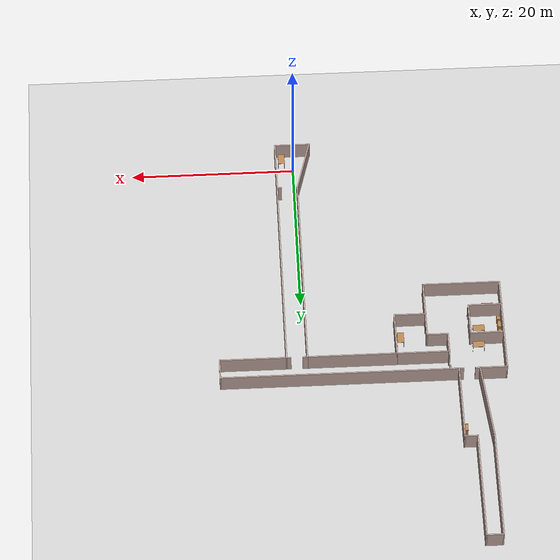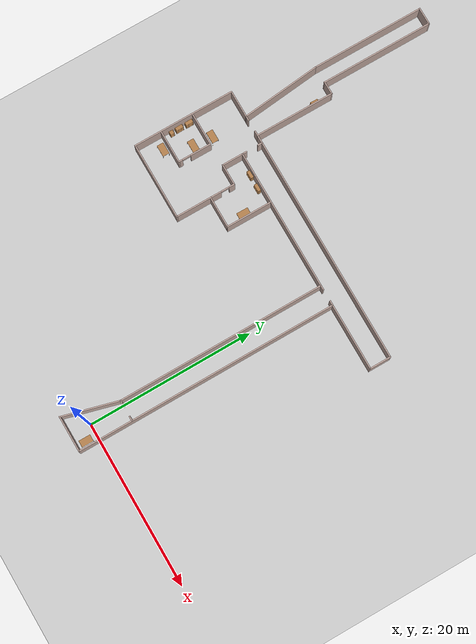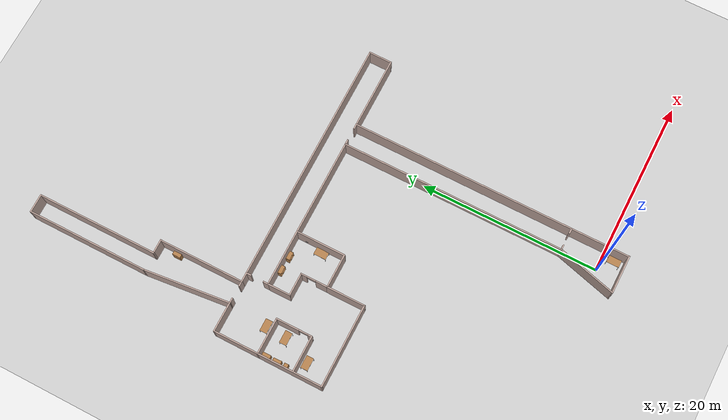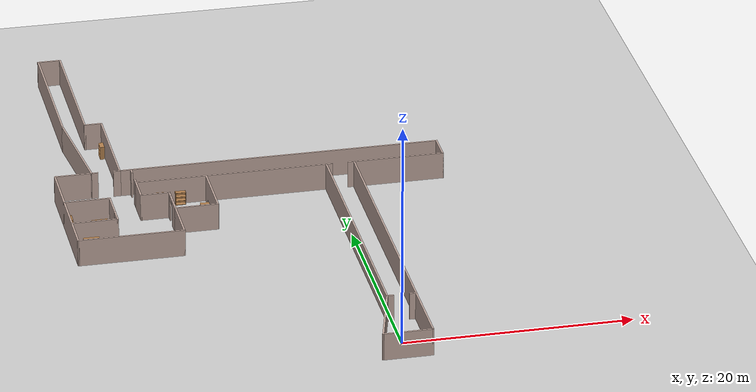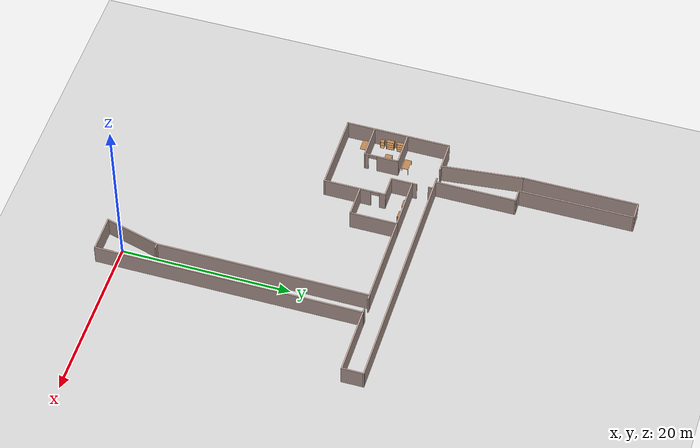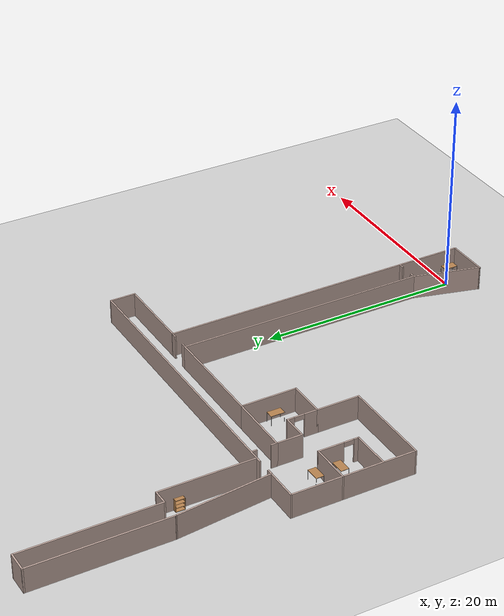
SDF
<sdf version="1.6">
 <world name="default">
  <light name="sun" type="directional">
   <pose>0 0 10 0 -0 0</pose>
   <diffuse>0.8 0.8 0.8 1</diffuse>
   <specular>0.1 0.1 0.1 1</specular>
   <attenuation>
    <range>1000</range>
    <constant>0.9</constant>
    <linear>0.01</linear>
    <quadratic>0.001</quadratic>
   </attenuation>
   <direction>-0.5 0.5 -1</direction>
  </light>
  <model name="ground_plane">
   <static>1</static>
   <link name="link">
    <collision name="collision">
     <geometry><plane><normal>0 0 1</normal><size>100 100</size></plane></geometry>
     <surface><friction><ode><mu>100</mu><mu2>50</mu2></ode></friction></surface>
    </collision>
    <visual name="visual">
     <cast_shadows>0</cast_shadows>
     <geometry><plane><normal>0 0 1</normal><size>100 120</size></plane></geometry>
     <material>
      <script><uri>file://media/materials/scripts/gazebo.material</uri><name>Gazebo/Grey</name></script>
     </material>
    </visual>
   </link>
  </model>
  <gravity>0 0 -9.8</gravity>
  <magnetic_field>6e-06 2.3e-05 -4.2e-05</magnetic_field>
  <atmosphere type="adiabatic"/>
  <physics name="default_physics" default="0" type="ode">
   <max_step_size>0.001</max_step_size>
   <real_time_factor>1</real_time_factor>
   <real_time_update_rate>1000</real_time_update_rate>
  </physics>
  <scene>
   <ambient>0.9 0.9 0.9 1</ambient>
   <background>0.7 0.7 0.7 1</background>
   <shadows>1</shadows>
   <grid>0</grid>
  </scene>
  <spherical_coordinates>
   <surface_model>EARTH_WGS84</surface_model>
   <latitude_deg>0</latitude_deg>
   <longitude_deg>0</longitude_deg>
   <elevation>0</elevation>
   <heading_deg>0</heading_deg>
  </spherical_coordinates>
  <model name="utias2">
   <pose>-6.98603 26.1314 -0.100807 0 -0 0</pose>
   <link name="Wall_0">
    <collision name="Wall_0_Collision">
     <geometry><box><size>4.4 0.15 2.5</size></box></geometry>
     <pose>0 0 1.25 0 -0 0</pose>
    </collision>
    <visual name="Wall_0_Visual">
     <pose>0 0 1.25 0 -0 0</pose>
     <geometry><box><size>4.4 0.15 2.5</size></box></geometry>
     <material>
      <script><uri>file://media/materials/scripts/gazebo.material</uri><name>Gazebo/Grey</name></script>
      <ambient>0.760784 0.662745 0.627451 1</ambient>
     </material>
    </visual>
    <pose>7.00014 -28.4915 0 0 -0 0</pose>
   </link>
   <link name="Wall_1">
    <collision name="Wall_1_Collision">
     <geometry><box><size>31.65 0.15 2.5</size></box></geometry>
     <pose>0 0 1.25 0 -0 0</pose>
    </collision>
    <visual name="Wall_1_Visual">
     <pose>0 0 1.25 0 -0 0</pose>
     <geometry><box><size>31.65 0.15 2.5</size></box></geometry>
     <material>
      <script><uri>file://media/materials/scripts/gazebo.material</uri><name>Gazebo/Grey</name></script>
      <ambient>0.760784 0.662745 0.627451 1</ambient>
     </material>
    </visual>
    <pose>9.12514 -12.7415 0 0 -0 1.5708</pose>
   </link>
   <link name="Wall_10">
    <collision name="Wall_10_Collision">
     <geometry><box><size>9.70249 0.15 2.5</size></box></geometry>
     <pose>0 0 1.25 0 -0 0</pose>
    </collision>
    <visual name="Wall_10_Visual">
     <pose>0 0 1.25 0 -0 0</pose>
     <geometry><box><size>9.70249 0.15 2.5</size></box></geometry>
     <material>
      <script><uri>file://media/materials/scripts/gazebo.material</uri><name>Gazebo/Grey</name></script>
      <ambient>0.760784 0.662745 0.627451 1</ambient>
     </material>
    </visual>
    <pose>-14.3749 10.2585 0 0 0 -1.46592</pose>
   </link>
   <link name="Wall_12">
    <collision name="Wall_12_Collision">
     <geometry><box><size>3.4 0.15 2.5</size></box></geometry>
     <pose>0 0 1.25 0 -0 0</pose>
    </collision>
    <visual name="Wall_12_Visual">
     <pose>0 0 1.25 0 -0 0</pose>
     <geometry><box><size>3.4 0.15 2.5</size></box></geometry>
     <material>
      <script><uri>file://media/materials/scripts/gazebo.material</uri><name>Gazebo/Grey</name></script>
      <ambient>0.760784 0.662745 0.627451 1</ambient>
     </material>
    </visual>
    <pose>-15.4999 5.50846 0 0 -0 3.14159</pose>
   </link>
   <link name="Wall_14">
    <collision name="Wall_14_Collision">
     <geometry><box><size>12.4 0.15 2.5</size></box></geometry>
     <pose>0 0 1.25 0 -0 0</pose>
    </collision>
    <visual name="Wall_14_Visual">
     <pose>0 0 1.25 0 -0 0</pose>
     <geometry><box><size>12.4 0.15 2.5</size></box></geometry>
     <material>
      <script><uri>file://media/materials/scripts/gazebo.material</uri><name>Gazebo/Grey</name></script>
      <ambient>0.760784 0.662745 0.627451 1</ambient>
     </material>
    </visual>
    <pose>-17.1249 -0.616541 0 0 0 -1.5708</pose>
   </link>
   <link name="Wall_15">
    <collision name="Wall_15_Collision">
     <geometry><box><size>9.40054 0.15 2.5</size></box></geometry>
     <pose>0 0 1.25 0 -0 0</pose>
    </collision>
    <visual name="Wall_15_Visual">
     <pose>0 0 1.25 0 -0 0</pose>
     <geometry><box><size>9.40054 0.15 2.5</size></box></geometry>
     <material>
      <script><uri>file://media/materials/scripts/gazebo.material</uri><name>Gazebo/Grey</name></script>
      <ambient>0.760784 0.662745 0.627451 1</ambient>
     </material>
    </visual>
    <pose>-12.4999 -6.74154 0 0 -0 0</pose>
   </link>
   <link name="Wall_16">
    <collision name="Wall_16_Collision">
     <geometry><box><size>4.4 0.15 2.5</size></box></geometry>
     <pose>0 0 1.25 0 -0 0</pose>
    </collision>
    <visual name="Wall_16_Visual">
     <pose>0 0 1.25 0 -0 0</pose>
     <geometry><box><size>4.4 0.15 2.5</size></box></geometry>
     <material>
      <script><uri>file://media/materials/scripts/gazebo.material</uri><name>Gazebo/Grey</name></script>
      <ambient>0.760784 0.662745 0.627451 1</ambient>
     </material>
    </visual>
    <pose>-7.87486 -4.61654 0 0 -0 1.5708</pose>
   </link>
   <link name="Wall_17">
    <collision name="Wall_17_Collision">
     <geometry><box><size>3.9 0.15 2.5</size></box></geometry>
     <pose>0 0 1.25 0 -0 0</pose>
    </collision>
    <visual name="Wall_17_Visual">
     <pose>0 0 1.25 0 -0 0</pose>
     <geometry><box><size>3.9 0.15 2.5</size></box></geometry>
     <material>
      <script><uri>file://media/materials/scripts/gazebo.material</uri><name>Gazebo/Grey</name></script>
      <ambient>0.760784 0.662745 0.627451 1</ambient>
     </material>
    </visual>
    <pose>-5.99986 -2.49154 0 0 -0 0</pose>
   </link>
   <link name="Wall_18">
    <collision name="Wall_18_Collision">
     <geometry><box><size>5.65 0.15 2.5</size></box></geometry>
     <pose>0 0 1.25 0 -0 0</pose>
    </collision>
    <visual name="Wall_18_Visual">
     <pose>0 0 1.25 0 -0 0</pose>
     <geometry><box><size>5.65 0.15 2.5</size></box></geometry>
     <material>
      <script><uri>file://media/materials/scripts/gazebo.material</uri><name>Gazebo/Grey</name></script>
      <ambient>0.760784 0.662745 0.627451 1</ambient>
     </material>
    </visual>
    <pose>-4.12486 0.258459 0 0 -0 1.5708</pose>
   </link>
   <link name="Wall_19">
    <collision name="Wall_19_Collision">
     <geometry><box><size>10.9 0.15 2.5</size></box></geometry>
     <pose>0 0 1.25 0 -0 0</pose>
    </collision>
    <visual name="Wall_19_Visual">
     <pose>0 0 1.25 0 -0 0</pose>
     <geometry><box><size>10.9 0.15 2.5</size></box></geometry>
     <material>
      <script><uri>file://media/materials/scripts/gazebo.material</uri><name>Gazebo/Grey</name></script>
      <ambient>0.760784 0.662745 0.627451 1</ambient>
     </material>
    </visual>
    <pose>1.25014 3.00846 0 0 -0 0</pose>
   </link>
   <link name="Wall_2">
    <collision name="Wall_2_Collision">
     <geometry><box><size>8.15 0.15 2.5</size></box></geometry>
     <pose>0 0 1.25 0 -0 0</pose>
    </collision>
    <visual name="Wall_2_Visual">
     <pose>0 0 1.25 0 -0 0</pose>
     <geometry><box><size>8.15 0.15 2.5</size></box></geometry>
     <material>
      <script><uri>file://media/materials/scripts/gazebo.material</uri><name>Gazebo/Grey</name></script>
      <ambient>0.760784 0.662745 0.627451 1</ambient>
     </material>
    </visual>
    <pose>13.1251 3.00846 0 0 -0 0</pose>
   </link>
   <link name="Wall_21">
    <collision name="Wall_21_Collision">
     <geometry><box><size>6.4 0.15 2.5</size></box></geometry>
     <pose>0 0 1.25 0 -0 0</pose>
    </collision>
    <visual name="Wall_21_Visual">
     <pose>0 0 1.25 0 -0 0</pose>
     <geometry><box><size>6.4 0.15 2.5</size></box></geometry>
     <material>
      <script><uri>file://media/materials/scripts/gazebo.material</uri><name>Gazebo/Grey</name></script>
      <ambient>0.760784 0.662745 0.627451 1</ambient>
     </material>
    </visual>
    <pose>-7.24986 3.00846 0 0 -0 3.14159</pose>
   </link>
   <link name="Wall_22">
    <collision name="Wall_22_Collision">
     <geometry><box><size>2.65 0.15 2.5</size></box></geometry>
     <pose>0 0 1.25 0 -0 0</pose>
    </collision>
    <visual name="Wall_22_Visual">
     <pose>0 0 1.25 0 -0 0</pose>
     <geometry><box><size>2.65 0.15 2.5</size></box></geometry>
     <material>
      <script><uri>file://media/materials/scripts/gazebo.material</uri><name>Gazebo/Grey</name></script>
      <ambient>0.760784 0.662745 0.627451 1</ambient>
     </material>
    </visual>
    <pose>-10.3749 1.75846 0 0 0 -1.5708</pose>
   </link>
   <link name="Wall_23">
    <collision name="Wall_23_Collision">
     <geometry><box><size>2.65 0.15 2.5</size></box></geometry>
     <pose>0 0 1.25 0 -0 0</pose>
    </collision>
    <visual name="Wall_23_Visual">
     <pose>0 0 1.25 0 -0 0</pose>
     <geometry><box><size>2.65 0.15 2.5</size></box></geometry>
     <material>
      <script><uri>file://media/materials/scripts/gazebo.material</uri><name>Gazebo/Grey</name></script>
      <ambient>0.760784 0.662745 0.627451 1</ambient>
     </material>
    </visual>
    <pose>-9.12486 0.508459 0 0 -0 0</pose>
   </link>
   <link name="Wall_24">
    <pose>-7.87486 -0.991541 0 0 0 -1.5708</pose>
    <visual name="Wall_24_Visual_0">
     <pose>-1.20455 0 1.25 0 -0 0</pose>
     <geometry><box><size>0.740907 0.15 2.5</size></box></geometry>
     <material>
      <script><uri>file://media/materials/scripts/gazebo.material</uri><name>Gazebo/Grey</name></script>
      <ambient>0.760784 0.662745 0.627451 1</ambient>
     </material>
    </visual>
    <collision name="Wall_24_Collision_0">
     <geometry><box><size>0.740907 0.15 2.5</size></box></geometry>
     <pose>-1.20455 0 1.25 0 -0 0</pose>
    </collision>
    <visual name="Wall_24_Visual_1">
     <pose>0.870453 0 1.25 0 -0 0</pose>
     <geometry><box><size>1.40909 0.15 2.5</size></box></geometry>
     <material>
      <script><uri>file://media/materials/scripts/gazebo.material</uri><name>Gazebo/Grey</name></script>
      <ambient>0.760784 0.662745 0.627451 1</ambient>
     </material>
    </visual>
    <collision name="Wall_24_Collision_1">
     <geometry><box><size>1.40909 0.15 2.5</size></box></geometry>
     <pose>0.870453 0 1.25 0 -0 0</pose>
    </collision>
    <visual name="Wall_24_Visual_2">
     <pose>-0.334093 0 2.25 0 -0 0</pose>
     <geometry><box><size>1 0.15 0.5</size></box></geometry>
     <material>
      <script><uri>file://media/materials/scripts/gazebo.material</uri><name>Gazebo/Grey</name></script>
      <ambient>0.760784 0.662745 0.627451 1</ambient>
     </material>
    </visual>
    <collision name="Wall_24_Collision_2">
     <geometry><box><size>1 0.15 0.5</size></box></geometry>
     <pose>-0.334093 0 2.25 0 -0 0</pose>
    </collision>
   </link>
   <link name="Wall_26">
    <collision name="Wall_26_Collision">
     <geometry><box><size>4.15 0.15 2.5</size></box></geometry>
     <pose>0 0 1.25 0 -0 0</pose>
    </collision>
    <visual name="Wall_26_Visual">
     <pose>0 0 1.25 0 -0 0</pose>
     <geometry><box><size>4.15 0.15 2.5</size></box></geometry>
     <material>
      <script><uri>file://media/materials/scripts/gazebo.material</uri><name>Gazebo/Grey</name></script>
      <ambient>0.760784 0.662745 0.627451 1</ambient>
     </material>
    </visual>
    <pose>-15.1249 0.508459 0 0 -0 0</pose>
   </link>
   <link name="Wall_27">
    <pose>-13.1249 -1.49154 0 0 0 -1.5708</pose>
    <visual name="Wall_27_Visual_0">
     <pose>-0.771545 0 1.25 0 -0 0</pose>
     <geometry><box><size>2.60691 0.15 2.5</size></box></geometry>
     <material>
      <script><uri>file://media/materials/scripts/gazebo.material</uri><name>Gazebo/Grey</name></script>
      <ambient>0.760784 0.662745 0.627451 1</ambient>
     </material>
    </visual>
    <collision name="Wall_27_Collision_0">
     <geometry><box><size>2.60691 0.15 2.5</size></box></geometry>
     <pose>-0.771545 0 1.25 0 -0 0</pose>
    </collision>
    <visual name="Wall_27_Visual_1">
     <pose>1.80346 0 1.25 0 -0 0</pose>
     <geometry><box><size>0.543089 0.15 2.5</size></box></geometry>
     <material>
      <script><uri>file://media/materials/scripts/gazebo.material</uri><name>Gazebo/Grey</name></script>
      <ambient>0.760784 0.662745 0.627451 1</ambient>
     </material>
    </visual>
    <collision name="Wall_27_Collision_1">
     <geometry><box><size>0.543089 0.15 2.5</size></box></geometry>
     <pose>1.80346 0 1.25 0 -0 0</pose>
    </collision>
    <visual name="Wall_27_Visual_2">
     <pose>1.03191 0 2.25 0 -0 0</pose>
     <geometry><box><size>1 0.15 0.5</size></box></geometry>
     <material>
      <script><uri>file://media/materials/scripts/gazebo.material</uri><name>Gazebo/Grey</name></script>
      <ambient>0.760784 0.662745 0.627451 1</ambient>
     </material>
    </visual>
    <collision name="Wall_27_Collision_2">
     <geometry><box><size>1 0.15 0.5</size></box></geometry>
     <pose>1.03191 0 2.25 0 -0 0</pose>
    </collision>
   </link>
   <link name="Wall_28">
    <collision name="Wall_28_Collision">
     <geometry><box><size>4.15 0.15 2.5</size></box></geometry>
     <pose>0 0 1.25 0 -0 0</pose>
    </collision>
    <visual name="Wall_28_Visual">
     <pose>0 0 1.25 0 -0 0</pose>
     <geometry><box><size>4.15 0.15 2.5</size></box></geometry>
     <material>
      <script><uri>file://media/materials/scripts/gazebo.material</uri><name>Gazebo/Grey</name></script>
      <ambient>0.760784 0.662745 0.627451 1</ambient>
     </material>
    </visual>
    <pose>-15.1249 -3.49154 0 0 -0 3.14159</pose>
   </link>
   <link name="Wall_3">
    <collision name="Wall_3_Collision">
     <geometry><box><size>2.65 0.15 2.5</size></box></geometry>
     <pose>0 0 1.25 0 -0 0</pose>
    </collision>
    <visual name="Wall_3_Visual">
     <pose>0 0 1.25 0 -0 0</pose>
     <geometry><box><size>2.65 0.15 2.5</size></box></geometry>
     <material>
      <script><uri>file://media/materials/scripts/gazebo.material</uri><name>Gazebo/Grey</name></script>
      <ambient>0.760784 0.662745 0.627451 1</ambient>
     </material>
    </visual>
    <pose>17.1251 4.25846 0 0 -0 1.5708</pose>
   </link>
   <link name="Wall_30">
    <collision name="Wall_30_Collision">
     <geometry><box><size>25.15 0.15 2.5</size></box></geometry>
     <pose>0 0 1.25 0 -0 0</pose>
    </collision>
    <visual name="Wall_30_Visual">
     <pose>0 0 1.25 0 -0 0</pose>
     <geometry><box><size>25.15 0.15 2.5</size></box></geometry>
     <material>
      <script><uri>file://media/materials/scripts/gazebo.material</uri><name>Gazebo/Grey</name></script>
      <ambient>0.760784 0.662745 0.627451 1</ambient>
     </material>
    </visual>
    <pose>6.62514 -9.49154 0 0 0 -1.5708</pose>
   </link>
   <link name="Wall_31">
    <collision name="Wall_31_Collision">
     <geometry><box><size>6.88146 0.15 2.5</size></box></geometry>
     <pose>0 0 1.25 0 -0 0</pose>
    </collision>
    <visual name="Wall_31_Visual">
     <pose>0 0 1.25 0 -0 0</pose>
     <geometry><box><size>6.88146 0.15 2.5</size></box></geometry>
     <material>
      <script><uri>file://media/materials/scripts/gazebo.material</uri><name>Gazebo/Grey</name></script>
      <ambient>0.760784 0.662745 0.627451 1</ambient>
     </material>
    </visual>
    <pose>5.75014 -25.2415 0 0 0 -1.83379</pose>
   </link>
   <link name="Wall_33">
    <collision name="Wall_33_Collision">
     <geometry><box><size>0.65 0.15 2.5</size></box></geometry>
     <pose>0 0 1.25 0 -0 0</pose>
    </collision>
    <visual name="Wall_33_Visual">
     <pose>0 0 1.25 0 -0 0</pose>
     <geometry><box><size>0.65 0.15 2.5</size></box></geometry>
     <material>
      <script><uri>file://media/materials/scripts/gazebo.material</uri><name>Gazebo/Grey</name></script>
      <ambient>0.760784 0.662745 0.627451 1</ambient>
     </material>
    </visual>
    <pose>6.87514 -21.9915 0 0 -0 0</pose>
   </link>
   <link name="Wall_35">
    <collision name="Wall_35_Collision">
     <geometry><box><size>0.65 0.15 2.5</size></box></geometry>
     <pose>0 0 1.25 0 -0 0</pose>
    </collision>
    <visual name="Wall_35_Visual">
     <pose>0 0 1.25 0 -0 0</pose>
     <geometry><box><size>0.65 0.15 2.5</size></box></geometry>
     <material>
      <script><uri>file://media/materials/scripts/gazebo.material</uri><name>Gazebo/Grey</name></script>
      <ambient>0.760784 0.662745 0.627451 1</ambient>
     </material>
    </visual>
    <pose>8.87514 -21.9915 0 0 -0 3.14159</pose>
   </link>
   <link name="Wall_37">
    <collision name="Wall_37_Collision">
     <geometry><box><size>0.65 0.15 2.5</size></box></geometry>
     <pose>0 0 1.25 0 -0 0</pose>
    </collision>
    <visual name="Wall_37_Visual">
     <pose>0 0 1.25 0 -0 0</pose>
     <geometry><box><size>0.65 0.15 2.5</size></box></geometry>
     <material>
      <script><uri>file://media/materials/scripts/gazebo.material</uri><name>Gazebo/Grey</name></script>
      <ambient>0.760784 0.662745 0.627451 1</ambient>
     </material>
    </visual>
    <pose>8.87514 3.00846 0 0 -0 3.14159</pose>
   </link>
   <link name="Wall_39">
    <collision name="Wall_39_Collision">
     <geometry><box><size>0.65 0.15 2.5</size></box></geometry>
     <pose>0 0 1.25 0 -0 0</pose>
    </collision>
    <visual name="Wall_39_Visual">
     <pose>0 0 1.25 0 -0 0</pose>
     <geometry><box><size>0.65 0.15 2.5</size></box></geometry>
     <material>
      <script><uri>file://media/materials/scripts/gazebo.material</uri><name>Gazebo/Grey</name></script>
      <ambient>0.760784 0.662745 0.627451 1</ambient>
     </material>
    </visual>
    <pose>6.87514 3.00846 0 0 -0 0</pose>
   </link>
   <link name="Wall_4">
    <collision name="Wall_4_Collision">
     <geometry><box><size>28.65 0.15 2.5</size></box></geometry>
     <pose>0 0 1.25 0 -0 0</pose>
    </collision>
    <visual name="Wall_4_Visual">
     <pose>0 0 1.25 0 -0 0</pose>
     <geometry><box><size>28.65 0.15 2.5</size></box></geometry>
     <material>
      <script><uri>file://media/materials/scripts/gazebo.material</uri><name>Gazebo/Grey</name></script>
      <ambient>0.760784 0.662745 0.627451 1</ambient>
     </material>
    </visual>
    <pose>2.87514 5.50846 0 0 -0 3.14159</pose>
   </link>
   <link name="Wall_41">
    <collision name="Wall_41_Collision">
     <geometry><box><size>0.65 0.15 2.5</size></box></geometry>
     <pose>0 0 1.25 0 -0 0</pose>
    </collision>
    <visual name="Wall_41_Visual">
     <pose>0 0 1.25 0 -0 0</pose>
     <geometry><box><size>0.65 0.15 2.5</size></box></geometry>
     <material>
      <script><uri>file://media/materials/scripts/gazebo.material</uri><name>Gazebo/Grey</name></script>
      <ambient>0.760784 0.662745 0.627451 1</ambient>
     </material>
    </visual>
    <pose>-10.3749 3.25846 0 0 -0 1.5708</pose>
   </link>
   <link name="Wall_43">
    <collision name="Wall_43_Collision">
     <geometry><box><size>0.65 0.15 2.5</size></box></geometry>
     <pose>0 0 1.25 0 -0 0</pose>
    </collision>
    <visual name="Wall_43_Visual">
     <pose>0 0 1.25 0 -0 0</pose>
     <geometry><box><size>0.65 0.15 2.5</size></box></geometry>
     <material>
      <script><uri>file://media/materials/scripts/gazebo.material</uri><name>Gazebo/Grey</name></script>
      <ambient>0.760784 0.662745 0.627451 1</ambient>
     </material>
    </visual>
    <pose>-10.3749 5.25846 0 0 0 -1.5708</pose>
   </link>
   <link name="Wall_45">
    <collision name="Wall_45_Collision">
     <geometry><box><size>0.65 0.15 2.5</size></box></geometry>
     <pose>0 0 1.25 0 -0 0</pose>
    </collision>
    <visual name="Wall_45_Visual">
     <pose>0 0 1.25 0 -0 0</pose>
     <geometry><box><size>0.65 0.15 2.5</size></box></geometry>
     <material>
      <script><uri>file://media/materials/scripts/gazebo.material</uri><name>Gazebo/Grey</name></script>
      <ambient>0.760784 0.662745 0.627451 1</ambient>
     </material>
    </visual>
    <pose>-11.6249 5.50846 0 0 -0 3.14159</pose>
   </link>
   <link name="Wall_47">
    <collision name="Wall_47_Collision">
     <geometry><box><size>0.65 0.15 2.5</size></box></geometry>
     <pose>0 0 1.25 0 -0 0</pose>
    </collision>
    <visual name="Wall_47_Visual">
     <pose>0 0 1.25 0 -0 0</pose>
     <geometry><box><size>0.65 0.15 2.5</size></box></geometry>
     <material>
      <script><uri>file://media/materials/scripts/gazebo.material</uri><name>Gazebo/Grey</name></script>
      <ambient>0.760784 0.662745 0.627451 1</ambient>
     </material>
    </visual>
    <pose>-13.6249 5.50846 0 0 -0 0</pose>
   </link>
   <link name="Wall_5">
    <collision name="Wall_5_Collision">
     <geometry><box><size>9.65 0.15 2.5</size></box></geometry>
     <pose>0 0 1.25 0 -0 0</pose>
    </collision>
    <visual name="Wall_5_Visual">
     <pose>0 0 1.25 0 -0 0</pose>
     <geometry><box><size>9.65 0.15 2.5</size></box></geometry>
     <material>
      <script><uri>file://media/materials/scripts/gazebo.material</uri><name>Gazebo/Grey</name></script>
      <ambient>0.760784 0.662745 0.627451 1</ambient>
     </material>
    </visual>
    <pose>-11.3749 10.2585 0 0 -0 1.5708</pose>
   </link>
   <link name="Wall_6">
    <collision name="Wall_6_Collision">
     <geometry><box><size>1.65 0.15 2.5</size></box></geometry>
     <pose>0 0 1.25 0 -0 0</pose>
    </collision>
    <visual name="Wall_6_Visual">
     <pose>0 0 1.25 0 -0 0</pose>
     <geometry><box><size>1.65 0.15 2.5</size></box></geometry>
     <material>
      <script><uri>file://media/materials/scripts/gazebo.material</uri><name>Gazebo/Grey</name></script>
      <ambient>0.760784 0.662745 0.627451 1</ambient>
     </material>
    </visual>
    <pose>-12.1249 15.0085 0 0 -0 3.14159</pose>
   </link>
   <link name="Wall_7">
    <collision name="Wall_7_Collision">
     <geometry><box><size>13.65 0.15 2.5</size></box></geometry>
     <pose>0 0 1.25 0 -0 0</pose>
    </collision>
    <visual name="Wall_7_Visual">
     <pose>0 0 1.25 0 -0 0</pose>
     <geometry><box><size>13.65 0.15 2.5</size></box></geometry>
     <material>
      <script><uri>file://media/materials/scripts/gazebo.material</uri><name>Gazebo/Grey</name></script>
      <ambient>0.760784 0.662745 0.627451 1</ambient>
     </material>
    </visual>
    <pose>-12.8749 21.7585 0 0 -0 1.5708</pose>
   </link>
   <link name="Wall_8">
    <collision name="Wall_8_Collision">
     <geometry><box><size>2.15 0.15 2.5</size></box></geometry>
     <pose>0 0 1.25 0 -0 0</pose>
    </collision>
    <visual name="Wall_8_Visual">
     <pose>0 0 1.25 0 -0 0</pose>
     <geometry><box><size>2.15 0.15 2.5</size></box></geometry>
     <material>
      <script><uri>file://media/materials/scripts/gazebo.material</uri><name>Gazebo/Grey</name></script>
      <ambient>0.760784 0.662745 0.627451 1</ambient>
     </material>
    </visual>
    <pose>-13.8749 28.5085 0 0 -0 3.14159</pose>
   </link>
   <link name="Wall_9">
    <collision name="Wall_9_Collision">
     <geometry><box><size>13.65 0.15 2.5</size></box></geometry>
     <pose>0 0 1.25 0 -0 0</pose>
    </collision>
    <visual name="Wall_9_Visual">
     <pose>0 0 1.25 0 -0 0</pose>
     <geometry><box><size>13.65 0.15 2.5</size></box></geometry>
     <material>
      <script><uri>file://media/materials/scripts/gazebo.material</uri><name>Gazebo/Grey</name></script>
      <ambient>0.760784 0.662745 0.627451 1</ambient>
     </material>
    </visual>
    <pose>-14.8749 21.7585 0 0 0 -1.5708</pose>
   </link>
   <static>1</static>
  </model>
  <model name="table">
   <static>0</static>
   <link name="link">
    <collision name="surface">
     <pose>0 0 1 0 -0 0</pose>
     <geometry><box><size>1.5 0.8 0.03</size></box></geometry>
     <surface><friction><ode><mu>0.6</mu><mu2>0.6</mu2></ode></friction></surface>
    </collision>
    <visual name="visual1">
     <pose>0 0 1 0 -0 0</pose>
     <geometry><box><size>1.4 0.8 0.04</size></box></geometry>
     <material>
      <script><uri>file://media/materials/scripts/gazebo.material</uri><name>Gazebo/Wood</name></script>
     </material>
    </visual>
    <collision name="front_left_leg">
     <pose>0.68 0.38 0.5 0 -0 0</pose>
     <geometry><cylinder><radius>0.02</radius><length>1</length></cylinder></geometry>
    </collision>
    <visual name="front_left_leg">
     <pose>0.68 0.38 0.5 0 -0 0</pose>
     <geometry><cylinder><radius>0.02</radius><length>1</length></cylinder></geometry>
     <material>
      <script><uri>file://media/materials/scripts/gazebo.material</uri><name>Gazebo/Grey</name></script>
     </material>
    </visual>
    <collision name="front_right_leg">
     <pose>0.68 -0.38 0.5 0 -0 0</pose>
     <geometry><cylinder><radius>0.02</radius><length>1</length></cylinder></geometry>
    </collision>
    <visual name="front_right_leg">
     <pose>0.68 -0.38 0.5 0 -0 0</pose>
     <geometry><cylinder><radius>0.02</radius><length>1</length></cylinder></geometry>
     <material>
      <script><uri>file://media/materials/scripts/gazebo.material</uri><name>Gazebo/Grey</name></script>
     </material>
    </visual>
    <collision name="back_right_leg">
     <pose>-0.68 -0.38 0.5 0 -0 0</pose>
     <geometry><cylinder><radius>0.02</radius><length>1</length></cylinder></geometry>
    </collision>
    <visual name="back_right_leg">
     <pose>-0.68 -0.38 0.5 0 -0 0</pose>
     <geometry><cylinder><radius>0.02</radius><length>1</length></cylinder></geometry>
     <material>
      <script><uri>file://media/materials/scripts/gazebo.material</uri><name>Gazebo/Grey</name></script>
     </material>
    </visual>
    <collision name="back_left_leg">
     <pose>-0.68 0.38 0.5 0 -0 0</pose>
     <geometry><cylinder><radius>0.02</radius><length>1</length></cylinder></geometry>
    </collision>
    <visual name="back_left_leg">
     <pose>-0.68 0.38 0.5 0 -0 0</pose>
     <geometry><cylinder><radius>0.02</radius><length>1</length></cylinder></geometry>
     <material>
      <script><uri>file://media/materials/scripts/gazebo.material</uri><name>Gazebo/Grey</name></script>
     </material>
    </visual>
    <inertial>
     <inertia><ixx>1</ixx><ixy>0</ixy><ixz>0</ixz><iyy>1</iyy><iyz>0</iyz><izz>1</izz></inertia>
     <mass>1</mass>
    </inertial>
   </link>
   <pose>1.40885 -1.2425 -8e-06 0 -2e-06 -1.57252</pose>
  </model>
  <model name="table_0">
   <static>0</static>
   <link name="link">
    <collision name="surface">
     <pose>0 0 1 0 -0 0</pose>
     <geometry><box><size>1.5 0.8 0.03</size></box></geometry>
     <surface><friction><ode><mu>0.6</mu><mu2>0.6</mu2></ode></friction></surface>
    </collision>
    <visual name="visual1">
     <pose>0 0 1 0 -0 0</pose>
     <geometry><box><size>1.4 0.8 0.04</size></box></geometry>
     <material>
      <script><uri>file://media/materials/scripts/gazebo.material</uri><name>Gazebo/Wood</name></script>
     </material>
    </visual>
    <collision name="front_left_leg">
     <pose>0.68 0.38 0.5 0 -0 0</pose>
     <geometry><cylinder><radius>0.02</radius><length>1</length></cylinder></geometry>
    </collision>
    <visual name="front_left_leg">
     <pose>0.68 0.38 0.5 0 -0 0</pose>
     <geometry><cylinder><radius>0.02</radius><length>1</length></cylinder></geometry>
     <material>
      <script><uri>file://media/materials/scripts/gazebo.material</uri><name>Gazebo/Grey</name></script>
     </material>
    </visual>
    <collision name="front_right_leg">
     <pose>0.68 -0.38 0.5 0 -0 0</pose>
     <geometry><cylinder><radius>0.02</radius><length>1</length></cylinder></geometry>
    </collision>
    <visual name="front_right_leg">
     <pose>0.68 -0.38 0.5 0 -0 0</pose>
     <geometry><cylinder><radius>0.02</radius><length>1</length></cylinder></geometry>
     <material>
      <script><uri>file://media/materials/scripts/gazebo.material</uri><name>Gazebo/Grey</name></script>
     </material>
    </visual>
    <collision name="back_right_leg">
     <pose>-0.68 -0.38 0.5 0 -0 0</pose>
     <geometry><cylinder><radius>0.02</radius><length>1</length></cylinder></geometry>
    </collision>
    <visual name="back_right_leg">
     <pose>-0.68 -0.38 0.5 0 -0 0</pose>
     <geometry><cylinder><radius>0.02</radius><length>1</length></cylinder></geometry>
     <material>
      <script><uri>file://media/materials/scripts/gazebo.material</uri><name>Gazebo/Grey</name></script>
     </material>
    </visual>
    <collision name="back_left_leg">
     <pose>-0.68 0.38 0.5 0 -0 0</pose>
     <geometry><cylinder><radius>0.02</radius><length>1</length></cylinder></geometry>
    </collision>
    <visual name="back_left_leg">
     <pose>-0.68 0.38 0.5 0 -0 0</pose>
     <geometry><cylinder><radius>0.02</radius><length>1</length></cylinder></geometry>
     <material>
      <script><uri>file://media/materials/scripts/gazebo.material</uri><name>Gazebo/Grey</name></script>
     </material>
    </visual>
    <inertial>
     <inertia><ixx>1</ixx><ixy>0</ixy><ixz>0</ixz><iyy>1</iyy><iyz>0</iyz><izz>1</izz></inertia>
     <mass>1</mass>
    </inertial>
   </link>
   <pose>-21.2383 25.0678 -9e-06 0 -1e-06 0</pose>
  </model>
  <model name="bookshelf">
   <static>1</static>
   <link name="link">
    <inertial><mass>1</mass></inertial>
    <collision name="back">
     <pose>0 0.005 0.6 0 -0 0</pose>
     <geometry><box><size>0.9 0.01 1.2</size></box></geometry>
    </collision>
    <visual name="visual1">
     <pose>0 0.005 0.6 0 -0 0</pose>
     <geometry><box><size>0.9 0.01 1.2</size></box></geometry>
     <material>
      <script><uri>file://media/materials/scripts/gazebo.material</uri><name>Gazebo/Wood</name></script>
     </material>
    </visual>
    <collision name="left_side">
     <pose>0.45 -0.195 0.6 0 -0 0</pose>
     <geometry><box><size>0.02 0.4 1.2</size></box></geometry>
    </collision>
    <visual name="visual2">
     <pose>0.45 -0.195 0.6 0 -0 0</pose>
     <geometry><box><size>0.02 0.4 1.2</size></box></geometry>
     <material>
      <script><uri>file://media/materials/scripts/gazebo.material</uri><name>Gazebo/Wood</name></script>
     </material>
    </visual>
    <collision name="right_side">
     <pose>-0.45 -0.195 0.6 0 -0 0</pose>
     <geometry><box><size>0.02 0.4 1.2</size></box></geometry>
    </collision>
    <visual name="visual3">
     <pose>-0.45 -0.195 0.6 0 -0 0</pose>
     <geometry><box><size>0.02 0.4 1.2</size></box></geometry>
     <material>
      <script><uri>file://media/materials/scripts/gazebo.material</uri><name>Gazebo/Wood</name></script>
     </material>
    </visual>
    <collision name="bottom">
     <pose>0 -0.195 0.03 0 -0 0</pose>
     <geometry><box><size>0.88 0.4 0.06</size></box></geometry>
    </collision>
    <visual name="visual4">
     <pose>0 -0.195 0.03 0 -0 0</pose>
     <geometry><box><size>0.88 0.4 0.06</size></box></geometry>
     <material>
      <script><uri>file://media/materials/scripts/gazebo.material</uri><name>Gazebo/Wood</name></script>
     </material>
    </visual>
    <collision name="top">
     <pose>0 -0.195 1.19 0 -0 0</pose>
     <geometry><box><size>0.88 0.4 0.02</size></box></geometry>
    </collision>
    <visual name="visual5">
     <pose>0 -0.195 1.19 0 -0 0</pose>
     <geometry><box><size>0.88 0.4 0.02</size></box></geometry>
     <material>
      <script><uri>file://media/materials/scripts/gazebo.material</uri><name>Gazebo/Wood</name></script>
     </material>
    </visual>
    <collision name="low_shelf">
     <pose>0 -0.195 0.43 0 -0 0</pose>
     <geometry><box><size>0.88 0.4 0.02</size></box></geometry>
    </collision>
    <visual name="visual6">
     <pose>0 -0.195 0.43 0 -0 0</pose>
     <geometry><box><size>0.88 0.4 0.02</size></box></geometry>
     <material>
      <script><uri>file://media/materials/scripts/gazebo.material</uri><name>Gazebo/Wood</name></script>
     </material>
    </visual>
    <collision name="high_shelf">
     <pose>0 -0.195 0.8 0 -0 0</pose>
     <geometry><box><size>0.88 0.4 0.02</size></box></geometry>
    </collision>
    <visual name="visual7">
     <pose>0 -0.195 0.8 0 -0 0</pose>
     <geometry><box><size>0.88 0.4 0.02</size></box></geometry>
     <material>
      <script><uri>file://media/materials/scripts/gazebo.material</uri><name>Gazebo/Wood</name></script>
     </material>
    </visual>
   </link>
   <pose>-23.9559 24.7006 0 0 -0 1.60029</pose>
  </model>
  <model name="cabinet">
   <static>1</static>
   <link name="cabinet_bottom_plate">
    <inertial>
     <pose>0 0 -1 0 -0 0</pose>
     <inertia><ixx>2.05</ixx><ixy>0</ixy><ixz>0</ixz><iyy>2.05</iyy><iyz>0</iyz><izz>2.05</izz></inertia>
     <mass>25</mass>
    </inertial>
    <collision name="cabinet_bottom_plate_geom">
     <pose>0 0 0.01 0 -0 0</pose>
     <geometry><box><size>0.45 0.45 0.02</size></box></geometry>
    </collision>
    <visual name="cabinet_bottom_plate_geom_visual">
     <pose>0 0 0.01 0 -0 0</pose>
     <geometry><box><size>0.45 0.45 0.02</size></box></geometry>
     <material>
      <script><uri>file://media/materials/scripts/gazebo.material</uri><name>Gazebo/Wood</name></script>
     </material>
    </visual>
    <collision name="cabinet_bottom_plate_geom_cabinet_back_plate">
     <pose>0.235 0 0.51 0 -0 0</pose>
     <geometry><box><size>0.02 0.45 1.02</size></box></geometry>
    </collision>
    <visual name="cabinet_bottom_plate_geom_cabinet_back_plate_visual">
     <pose>0.235 0 0.51 0 -0 0</pose>
     <geometry><box><size>0.02 0.45 1.02</size></box></geometry>
     <material>
      <script><uri>file://media/materials/scripts/gazebo.material</uri><name>Gazebo/Wood</name></script>
     </material>
    </visual>
    <collision name="cabinet_bottom_plate_geom_cabinet_left_plate">
     <pose>0 0.235 0.51 0 -0 0</pose>
     <geometry><box><size>0.45 0.02 1.02</size></box></geometry>
    </collision>
    <visual name="cabinet_bottom_plate_geom_cabinet_left_plate_visual">
     <pose>0 0.235 0.51 0 -0 0</pose>
     <geometry><box><size>0.45 0.02 1.02</size></box></geometry>
     <material>
      <script><uri>file://media/materials/scripts/gazebo.material</uri><name>Gazebo/Wood</name></script>
     </material>
    </visual>
    <collision name="cabinet_bottom_plate_geom_cabinet_middle_plate">
     <pose>0 0 0.51 0 -0 0</pose>
     <geometry><box><size>0.45 0.45 0.02</size></box></geometry>
    </collision>
    <visual name="cabinet_bottom_plate_geom_cabinet_middle_plate_visual">
     <pose>0 0 0.51 0 -0 0</pose>
     <geometry><box><size>0.45 0.45 0.02</size></box></geometry>
     <material>
      <script><uri>file://media/materials/scripts/gazebo.material</uri><name>Gazebo/Wood</name></script>
     </material>
    </visual>
    <collision name="cabinet_bottom_plate_geom_cabinet_right_plate">
     <pose>0 -0.235 0.51 0 -0 0</pose>
     <geometry><box><size>0.45 0.02 1.02</size></box></geometry>
    </collision>
    <visual name="cabinet_bottom_plate_geom_cabinet_right_plate_visual">
     <pose>0 -0.235 0.51 0 -0 0</pose>
     <geometry><box><size>0.45 0.02 1.02</size></box></geometry>
     <material>
      <script><uri>file://media/materials/scripts/gazebo.material</uri><name>Gazebo/Wood</name></script>
     </material>
    </visual>
    <collision name="cabinet_bottom_plate_geom_cabinet_top_plate">
     <pose>0 0 1.01 0 -0 0</pose>
     <geometry><box><size>0.45 0.45 0.02</size></box></geometry>
    </collision>
    <visual name="cabinet_bottom_plate_geom_cabinet_top_plate_visual">
     <pose>0 0 1.01 0 -0 0</pose>
     <geometry><box><size>0.45 0.45 0.02</size></box></geometry>
     <material>
      <script><uri>file://media/materials/scripts/gazebo.material</uri><name>Gazebo/Wood</name></script>
     </material>
    </visual>
   </link>
   <pose>-23.7337 23.732 0 0 0 -3.10151</pose>
  </model>
  <model name="bookshelf_0">
   <static>1</static>
   <link name="link">
    <inertial><mass>1</mass></inertial>
    <collision name="back">
     <pose>0 0.005 0.6 0 -0 0</pose>
     <geometry><box><size>0.9 0.01 1.2</size></box></geometry>
    </collision>
    <visual name="visual1">
     <pose>0 0.005 0.6 0 -0 0</pose>
     <geometry><box><size>0.9 0.01 1.2</size></box></geometry>
     <material>
      <script><uri>file://media/materials/scripts/gazebo.material</uri><name>Gazebo/Wood</name></script>
     </material>
    </visual>
    <collision name="left_side">
     <pose>0.45 -0.195 0.6 0 -0 0</pose>
     <geometry><box><size>0.02 0.4 1.2</size></box></geometry>
    </collision>
    <visual name="visual2">
     <pose>0.45 -0.195 0.6 0 -0 0</pose>
     <geometry><box><size>0.02 0.4 1.2</size></box></geometry>
     <material>
      <script><uri>file://media/materials/scripts/gazebo.material</uri><name>Gazebo/Wood</name></script>
     </material>
    </visual>
    <collision name="right_side">
     <pose>-0.45 -0.195 0.6 0 -0 0</pose>
     <geometry><box><size>0.02 0.4 1.2</size></box></geometry>
    </collision>
    <visual name="visual3">
     <pose>-0.45 -0.195 0.6 0 -0 0</pose>
     <geometry><box><size>0.02 0.4 1.2</size></box></geometry>
     <material>
      <script><uri>file://media/materials/scripts/gazebo.material</uri><name>Gazebo/Wood</name></script>
     </material>
    </visual>
    <collision name="bottom">
     <pose>0 -0.195 0.03 0 -0 0</pose>
     <geometry><box><size>0.88 0.4 0.06</size></box></geometry>
    </collision>
    <visual name="visual4">
     <pose>0 -0.195 0.03 0 -0 0</pose>
     <geometry><box><size>0.88 0.4 0.06</size></box></geometry>
     <material>
      <script><uri>file://media/materials/scripts/gazebo.material</uri><name>Gazebo/Wood</name></script>
     </material>
    </visual>
    <collision name="top">
     <pose>0 -0.195 1.19 0 -0 0</pose>
     <geometry><box><size>0.88 0.4 0.02</size></box></geometry>
    </collision>
    <visual name="visual5">
     <pose>0 -0.195 1.19 0 -0 0</pose>
     <geometry><box><size>0.88 0.4 0.02</size></box></geometry>
     <material>
      <script><uri>file://media/materials/scripts/gazebo.material</uri><name>Gazebo/Wood</name></script>
     </material>
    </visual>
    <collision name="low_shelf">
     <pose>0 -0.195 0.43 0 -0 0</pose>
     <geometry><box><size>0.88 0.4 0.02</size></box></geometry>
    </collision>
    <visual name="visual6">
     <pose>0 -0.195 0.43 0 -0 0</pose>
     <geometry><box><size>0.88 0.4 0.02</size></box></geometry>
     <material>
      <script><uri>file://media/materials/scripts/gazebo.material</uri><name>Gazebo/Wood</name></script>
     </material>
    </visual>
    <collision name="high_shelf">
     <pose>0 -0.195 0.8 0 -0 0</pose>
     <geometry><box><size>0.88 0.4 0.02</size></box></geometry>
    </collision>
    <visual name="visual7">
     <pose>0 -0.195 0.8 0 -0 0</pose>
     <geometry><box><size>0.88 0.4 0.02</size></box></geometry>
     <material>
      <script><uri>file://media/materials/scripts/gazebo.material</uri><name>Gazebo/Wood</name></script>
     </material>
    </visual>
   </link>
   <pose>-23.9396 25.9448 0 0 -0 1.575</pose>
  </model>
  <model name="bookshelf_1">
   <static>1</static>
   <link name="link">
    <inertial><mass>1</mass></inertial>
    <collision name="back">
     <pose>0 0.005 0.6 0 -0 0</pose>
     <geometry><box><size>0.9 0.01 1.2</size></box></geometry>
    </collision>
    <visual name="visual1">
     <pose>0 0.005 0.6 0 -0 0</pose>
     <geometry><box><size>0.9 0.01 1.2</size></box></geometry>
     <material>
      <script><uri>file://media/materials/scripts/gazebo.material</uri><name>Gazebo/Wood</name></script>
     </material>
    </visual>
    <collision name="left_side">
     <pose>0.45 -0.195 0.6 0 -0 0</pose>
     <geometry><box><size>0.02 0.4 1.2</size></box></geometry>
    </collision>
    <visual name="visual2">
     <pose>0.45 -0.195 0.6 0 -0 0</pose>
     <geometry><box><size>0.02 0.4 1.2</size></box></geometry>
     <material>
      <script><uri>file://media/materials/scripts/gazebo.material</uri><name>Gazebo/Wood</name></script>
     </material>
    </visual>
    <collision name="right_side">
     <pose>-0.45 -0.195 0.6 0 -0 0</pose>
     <geometry><box><size>0.02 0.4 1.2</size></box></geometry>
    </collision>
    <visual name="visual3">
     <pose>-0.45 -0.195 0.6 0 -0 0</pose>
     <geometry><box><size>0.02 0.4 1.2</size></box></geometry>
     <material>
      <script><uri>file://media/materials/scripts/gazebo.material</uri><name>Gazebo/Wood</name></script>
     </material>
    </visual>
    <collision name="bottom">
     <pose>0 -0.195 0.03 0 -0 0</pose>
     <geometry><box><size>0.88 0.4 0.06</size></box></geometry>
    </collision>
    <visual name="visual4">
     <pose>0 -0.195 0.03 0 -0 0</pose>
     <geometry><box><size>0.88 0.4 0.06</size></box></geometry>
     <material>
      <script><uri>file://media/materials/scripts/gazebo.material</uri><name>Gazebo/Wood</name></script>
     </material>
    </visual>
    <collision name="top">
     <pose>0 -0.195 1.19 0 -0 0</pose>
     <geometry><box><size>0.88 0.4 0.02</size></box></geometry>
    </collision>
    <visual name="visual5">
     <pose>0 -0.195 1.19 0 -0 0</pose>
     <geometry><box><size>0.88 0.4 0.02</size></box></geometry>
     <material>
      <script><uri>file://media/materials/scripts/gazebo.material</uri><name>Gazebo/Wood</name></script>
     </material>
    </visual>
    <collision name="low_shelf">
     <pose>0 -0.195 0.43 0 -0 0</pose>
     <geometry><box><size>0.88 0.4 0.02</size></box></geometry>
    </collision>
    <visual name="visual6">
     <pose>0 -0.195 0.43 0 -0 0</pose>
     <geometry><box><size>0.88 0.4 0.02</size></box></geometry>
     <material>
      <script><uri>file://media/materials/scripts/gazebo.material</uri><name>Gazebo/Wood</name></script>
     </material>
    </visual>
    <collision name="high_shelf">
     <pose>0 -0.195 0.8 0 -0 0</pose>
     <geometry><box><size>0.88 0.4 0.02</size></box></geometry>
    </collision>
    <visual name="visual7">
     <pose>0 -0.195 0.8 0 -0 0</pose>
     <geometry><box><size>0.88 0.4 0.02</size></box></geometry>
     <material>
      <script><uri>file://media/materials/scripts/gazebo.material</uri><name>Gazebo/Wood</name></script>
     </material>
    </visual>
   </link>
   <pose>-13.4786 29.0069 0 0 -0 0</pose>
  </model>
  <model name="bookshelf_2">
   <static>1</static>
   <link name="link">
    <inertial><mass>1</mass></inertial>
    <collision name="back">
     <pose>0 0.005 0.6 0 -0 0</pose>
     <geometry><box><size>0.9 0.01 1.2</size></box></geometry>
    </collision>
    <visual name="visual1">
     <pose>0 0.005 0.6 0 -0 0</pose>
     <geometry><box><size>0.9 0.01 1.2</size></box></geometry>
     <material>
      <script><uri>file://media/materials/scripts/gazebo.material</uri><name>Gazebo/Wood</name></script>
     </material>
    </visual>
    <collision name="left_side">
     <pose>0.45 -0.195 0.6 0 -0 0</pose>
     <geometry><box><size>0.02 0.4 1.2</size></box></geometry>
    </collision>
    <visual name="visual2">
     <pose>0.45 -0.195 0.6 0 -0 0</pose>
     <geometry><box><size>0.02 0.4 1.2</size></box></geometry>
     <material>
      <script><uri>file://media/materials/scripts/gazebo.material</uri><name>Gazebo/Wood</name></script>
     </material>
    </visual>
    <collision name="right_side">
     <pose>-0.45 -0.195 0.6 0 -0 0</pose>
     <geometry><box><size>0.02 0.4 1.2</size></box></geometry>
    </collision>
    <visual name="visual3">
     <pose>-0.45 -0.195 0.6 0 -0 0</pose>
     <geometry><box><size>0.02 0.4 1.2</size></box></geometry>
     <material>
      <script><uri>file://media/materials/scripts/gazebo.material</uri><name>Gazebo/Wood</name></script>
     </material>
    </visual>
    <collision name="bottom">
     <pose>0 -0.195 0.03 0 -0 0</pose>
     <geometry><box><size>0.88 0.4 0.06</size></box></geometry>
    </collision>
    <visual name="visual4">
     <pose>0 -0.195 0.03 0 -0 0</pose>
     <geometry><box><size>0.88 0.4 0.06</size></box></geometry>
     <material>
      <script><uri>file://media/materials/scripts/gazebo.material</uri><name>Gazebo/Wood</name></script>
     </material>
    </visual>
    <collision name="top">
     <pose>0 -0.195 1.19 0 -0 0</pose>
     <geometry><box><size>0.88 0.4 0.02</size></box></geometry>
    </collision>
    <visual name="visual5">
     <pose>0 -0.195 1.19 0 -0 0</pose>
     <geometry><box><size>0.88 0.4 0.02</size></box></geometry>
     <material>
      <script><uri>file://media/materials/scripts/gazebo.material</uri><name>Gazebo/Wood</name></script>
     </material>
    </visual>
    <collision name="low_shelf">
     <pose>0 -0.195 0.43 0 -0 0</pose>
     <geometry><box><size>0.88 0.4 0.02</size></box></geometry>
    </collision>
    <visual name="visual6">
     <pose>0 -0.195 0.43 0 -0 0</pose>
     <geometry><box><size>0.88 0.4 0.02</size></box></geometry>
     <material>
      <script><uri>file://media/materials/scripts/gazebo.material</uri><name>Gazebo/Wood</name></script>
     </material>
    </visual>
    <collision name="high_shelf">
     <pose>0 -0.195 0.8 0 -0 0</pose>
     <geometry><box><size>0.88 0.4 0.02</size></box></geometry>
    </collision>
    <visual name="visual7">
     <pose>0 -0.195 0.8 0 -0 0</pose>
     <geometry><box><size>0.88 0.4 0.02</size></box></geometry>
     <material>
      <script><uri>file://media/materials/scripts/gazebo.material</uri><name>Gazebo/Wood</name></script>
     </material>
    </visual>
   </link>
   <pose>-15.1763 29.0574 0 0 -0 0</pose>
  </model>
  <model name="table_1">
   <static>0</static>
   <link name="link">
    <collision name="surface">
     <pose>0 0 1 0 -0 0</pose>
     <geometry><box><size>1.5 0.8 0.03</size></box></geometry>
     <surface><friction><ode><mu>0.6</mu><mu2>0.6</mu2></ode></friction></surface>
    </collision>
    <visual name="visual1">
     <pose>0 0 1 0 -0 0</pose>
     <geometry><box><size>1.4 0.8 0.04</size></box></geometry>
     <material>
      <script><uri>file://media/materials/scripts/gazebo.material</uri><name>Gazebo/Wood</name></script>
     </material>
    </visual>
    <collision name="front_left_leg">
     <pose>0.68 0.38 0.5 0 -0 0</pose>
     <geometry><cylinder><radius>0.02</radius><length>1</length></cylinder></geometry>
    </collision>
    <visual name="front_left_leg">
     <pose>0.68 0.38 0.5 0 -0 0</pose>
     <geometry><cylinder><radius>0.02</radius><length>1</length></cylinder></geometry>
     <material>
      <script><uri>file://media/materials/scripts/gazebo.material</uri><name>Gazebo/Grey</name></script>
     </material>
    </visual>
    <collision name="front_right_leg">
     <pose>0.68 -0.38 0.5 0 -0 0</pose>
     <geometry><cylinder><radius>0.02</radius><length>1</length></cylinder></geometry>
    </collision>
    <visual name="front_right_leg">
     <pose>0.68 -0.38 0.5 0 -0 0</pose>
     <geometry><cylinder><radius>0.02</radius><length>1</length></cylinder></geometry>
     <material>
      <script><uri>file://media/materials/scripts/gazebo.material</uri><name>Gazebo/Grey</name></script>
     </material>
    </visual>
    <collision name="back_right_leg">
     <pose>-0.68 -0.38 0.5 0 -0 0</pose>
     <geometry><cylinder><radius>0.02</radius><length>1</length></cylinder></geometry>
    </collision>
    <visual name="back_right_leg">
     <pose>-0.68 -0.38 0.5 0 -0 0</pose>
     <geometry><cylinder><radius>0.02</radius><length>1</length></cylinder></geometry>
     <material>
      <script><uri>file://media/materials/scripts/gazebo.material</uri><name>Gazebo/Grey</name></script>
     </material>
    </visual>
    <collision name="back_left_leg">
     <pose>-0.68 0.38 0.5 0 -0 0</pose>
     <geometry><cylinder><radius>0.02</radius><length>1</length></cylinder></geometry>
    </collision>
    <visual name="back_left_leg">
     <pose>-0.68 0.38 0.5 0 -0 0</pose>
     <geometry><cylinder><radius>0.02</radius><length>1</length></cylinder></geometry>
     <material>
      <script><uri>file://media/materials/scripts/gazebo.material</uri><name>Gazebo/Grey</name></script>
     </material>
    </visual>
    <inertial>
     <inertia><ixx>1</ixx><ixy>0</ixy><ixz>0</ixz><iyy>1</iyy><iyz>0</iyz><izz>1</izz></inertia>
     <mass>1</mass>
    </inertial>
   </link>
   <pose>-21.0659 27.4242 -9e-06 0 -1e-06 0</pose>
  </model>
  <model name="table_2">
   <static>0</static>
   <link name="link">
    <collision name="surface">
     <pose>0 0 1 0 -0 0</pose>
     <geometry><box><size>1.5 0.8 0.03</size></box></geometry>
     <surface><friction><ode><mu>0.6</mu><mu2>0.6</mu2></ode></friction></surface>
    </collision>
    <visual name="visual1">
     <pose>0 0 1 0 -0 0</pose>
     <geometry><box><size>1.4 0.8 0.04</size></box></geometry>
     <material>
      <script><uri>file://media/materials/scripts/gazebo.material</uri><name>Gazebo/Wood</name></script>
     </material>
    </visual>
    <collision name="front_left_leg">
     <pose>0.68 0.38 0.5 0 -0 0</pose>
     <geometry><cylinder><radius>0.02</radius><length>1</length></cylinder></geometry>
    </collision>
    <visual name="front_left_leg">
     <pose>0.68 0.38 0.5 0 -0 0</pose>
     <geometry><cylinder><radius>0.02</radius><length>1</length></cylinder></geometry>
     <material>
      <script><uri>file://media/materials/scripts/gazebo.material</uri><name>Gazebo/Grey</name></script>
     </material>
    </visual>
    <collision name="front_right_leg">
     <pose>0.68 -0.38 0.5 0 -0 0</pose>
     <geometry><cylinder><radius>0.02</radius><length>1</length></cylinder></geometry>
    </collision>
    <visual name="front_right_leg">
     <pose>0.68 -0.38 0.5 0 -0 0</pose>
     <geometry><cylinder><radius>0.02</radius><length>1</length></cylinder></geometry>
     <material>
      <script><uri>file://media/materials/scripts/gazebo.material</uri><name>Gazebo/Grey</name></script>
     </material>
    </visual>
    <collision name="back_right_leg">
     <pose>-0.68 -0.38 0.5 0 -0 0</pose>
     <geometry><cylinder><radius>0.02</radius><length>1</length></cylinder></geometry>
    </collision>
    <visual name="back_right_leg">
     <pose>-0.68 -0.38 0.5 0 -0 0</pose>
     <geometry><cylinder><radius>0.02</radius><length>1</length></cylinder></geometry>
     <material>
      <script><uri>file://media/materials/scripts/gazebo.material</uri><name>Gazebo/Grey</name></script>
     </material>
    </visual>
    <collision name="back_left_leg">
     <pose>-0.68 0.38 0.5 0 -0 0</pose>
     <geometry><cylinder><radius>0.02</radius><length>1</length></cylinder></geometry>
    </collision>
    <visual name="back_left_leg">
     <pose>-0.68 0.38 0.5 0 -0 0</pose>
     <geometry><cylinder><radius>0.02</radius><length>1</length></cylinder></geometry>
     <material>
      <script><uri>file://media/materials/scripts/gazebo.material</uri><name>Gazebo/Grey</name></script>
     </material>
    </visual>
    <inertial>
     <inertia><ixx>1</ixx><ixy>0</ixy><ixz>0</ixz><iyy>1</iyy><iyz>0</iyz><izz>1</izz></inertia>
     <mass>1</mass>
    </inertial>
   </link>
   <pose>-22.5211 21.9404 -9e-06 0 -1e-06 0</pose>
  </model>
  <model name="table_3">
   <static>0</static>
   <link name="link">
    <collision name="surface">
     <pose>0 0 1 0 -0 0</pose>
     <geometry><box><size>1.5 0.8 0.03</size></box></geometry>
     <surface><friction><ode><mu>0.6</mu><mu2>0.6</mu2></ode></friction></surface>
    </collision>
    <visual name="visual1">
     <pose>0 0 1 0 -0 0</pose>
     <geometry><box><size>1.4 0.8 0.04</size></box></geometry>
     <material>
      <script><uri>file://media/materials/scripts/gazebo.material</uri><name>Gazebo/Wood</name></script>
     </material>
    </visual>
    <collision name="front_left_leg">
     <pose>0.68 0.38 0.5 0 -0 0</pose>
     <geometry><cylinder><radius>0.02</radius><length>1</length></cylinder></geometry>
    </collision>
    <visual name="front_left_leg">
     <pose>0.68 0.38 0.5 0 -0 0</pose>
     <geometry><cylinder><radius>0.02</radius><length>1</length></cylinder></geometry>
     <material>
      <script><uri>file://media/materials/scripts/gazebo.material</uri><name>Gazebo/Grey</name></script>
     </material>
    </visual>
    <collision name="front_right_leg">
     <pose>0.68 -0.38 0.5 0 -0 0</pose>
     <geometry><cylinder><radius>0.02</radius><length>1</length></cylinder></geometry>
    </collision>
    <visual name="front_right_leg">
     <pose>0.68 -0.38 0.5 0 -0 0</pose>
     <geometry><cylinder><radius>0.02</radius><length>1</length></cylinder></geometry>
     <material>
      <script><uri>file://media/materials/scripts/gazebo.material</uri><name>Gazebo/Grey</name></script>
     </material>
    </visual>
    <collision name="back_right_leg">
     <pose>-0.68 -0.38 0.5 0 -0 0</pose>
     <geometry><cylinder><radius>0.02</radius><length>1</length></cylinder></geometry>
    </collision>
    <visual name="back_right_leg">
     <pose>-0.68 -0.38 0.5 0 -0 0</pose>
     <geometry><cylinder><radius>0.02</radius><length>1</length></cylinder></geometry>
     <material>
      <script><uri>file://media/materials/scripts/gazebo.material</uri><name>Gazebo/Grey</name></script>
     </material>
    </visual>
    <collision name="back_left_leg">
     <pose>-0.68 0.38 0.5 0 -0 0</pose>
     <geometry><cylinder><radius>0.02</radius><length>1</length></cylinder></geometry>
    </collision>
    <visual name="back_left_leg">
     <pose>-0.68 0.38 0.5 0 -0 0</pose>
     <geometry><cylinder><radius>0.02</radius><length>1</length></cylinder></geometry>
     <material>
      <script><uri>file://media/materials/scripts/gazebo.material</uri><name>Gazebo/Grey</name></script>
     </material>
    </visual>
    <inertial>
     <inertia><ixx>1</ixx><ixy>0</ixy><ixz>0</ixz><iyy>1</iyy><iyz>0</iyz><izz>1</izz></inertia>
     <mass>1</mass>
    </inertial>
   </link>
   <pose>-11.7396 26.0307 -8e-06 0 -1e-06 -1.5848</pose>
  </model>
  <model name="bookshelf_3">
   <static>1</static>
   <link name="link">
    <inertial><mass>1</mass></inertial>
    <collision name="back">
     <pose>0 0.005 0.6 0 -0 0</pose>
     <geometry><box><size>0.9 0.01 1.2</size></box></geometry>
    </collision>
    <visual name="visual1">
     <pose>0 0.005 0.6 0 -0 0</pose>
     <geometry><box><size>0.9 0.01 1.2</size></box></geometry>
     <material>
      <script><uri>file://media/materials/scripts/gazebo.material</uri><name>Gazebo/Wood</name></script>
     </material>
    </visual>
    <collision name="left_side">
     <pose>0.45 -0.195 0.6 0 -0 0</pose>
     <geometry><box><size>0.02 0.4 1.2</size></box></geometry>
    </collision>
    <visual name="visual2">
     <pose>0.45 -0.195 0.6 0 -0 0</pose>
     <geometry><box><size>0.02 0.4 1.2</size></box></geometry>
     <material>
      <script><uri>file://media/materials/scripts/gazebo.material</uri><name>Gazebo/Wood</name></script>
     </material>
    </visual>
    <collision name="right_side">
     <pose>-0.45 -0.195 0.6 0 -0 0</pose>
     <geometry><box><size>0.02 0.4 1.2</size></box></geometry>
    </collision>
    <visual name="visual3">
     <pose>-0.45 -0.195 0.6 0 -0 0</pose>
     <geometry><box><size>0.02 0.4 1.2</size></box></geometry>
     <material>
      <script><uri>file://media/materials/scripts/gazebo.material</uri><name>Gazebo/Wood</name></script>
     </material>
    </visual>
    <collision name="bottom">
     <pose>0 -0.195 0.03 0 -0 0</pose>
     <geometry><box><size>0.88 0.4 0.06</size></box></geometry>
    </collision>
    <visual name="visual4">
     <pose>0 -0.195 0.03 0 -0 0</pose>
     <geometry><box><size>0.88 0.4 0.06</size></box></geometry>
     <material>
      <script><uri>file://media/materials/scripts/gazebo.material</uri><name>Gazebo/Wood</name></script>
     </material>
    </visual>
    <collision name="top">
     <pose>0 -0.195 1.19 0 -0 0</pose>
     <geometry><box><size>0.88 0.4 0.02</size></box></geometry>
    </collision>
    <visual name="visual5">
     <pose>0 -0.195 1.19 0 -0 0</pose>
     <geometry><box><size>0.88 0.4 0.02</size></box></geometry>
     <material>
      <script><uri>file://media/materials/scripts/gazebo.material</uri><name>Gazebo/Wood</name></script>
     </material>
    </visual>
    <collision name="low_shelf">
     <pose>0 -0.195 0.43 0 -0 0</pose>
     <geometry><box><size>0.88 0.4 0.02</size></box></geometry>
    </collision>
    <visual name="visual6">
     <pose>0 -0.195 0.43 0 -0 0</pose>
     <geometry><box><size>0.88 0.4 0.02</size></box></geometry>
     <material>
      <script><uri>file://media/materials/scripts/gazebo.material</uri><name>Gazebo/Wood</name></script>
     </material>
    </visual>
    <collision name="high_shelf">
     <pose>0 -0.195 0.8 0 -0 0</pose>
     <geometry><box><size>0.88 0.4 0.02</size></box></geometry>
    </collision>
    <visual name="visual7">
     <pose>0 -0.195 0.8 0 -0 0</pose>
     <geometry><box><size>0.88 0.4 0.02</size></box></geometry>
     <material>
      <script><uri>file://media/materials/scripts/gazebo.material</uri><name>Gazebo/Wood</name></script>
     </material>
    </visual>
   </link>
   <pose>-18.509 39.2023 0.016066 0 0 -1.58496</pose>
  </model>
  <model name="qr_only">
   <pose>-11.1985 28.0308 0.399999 -1.57079 -0 1.55361</pose>
   <static>1</static>
   <link name="link">
    <visual name="visual">
     <geometry><mesh><uri>model://qr_only/only.dae</uri><scale>1 1 1</scale></mesh></geometry>
    </visual>
   </link>
  </model>
 </world>
</sdf>
